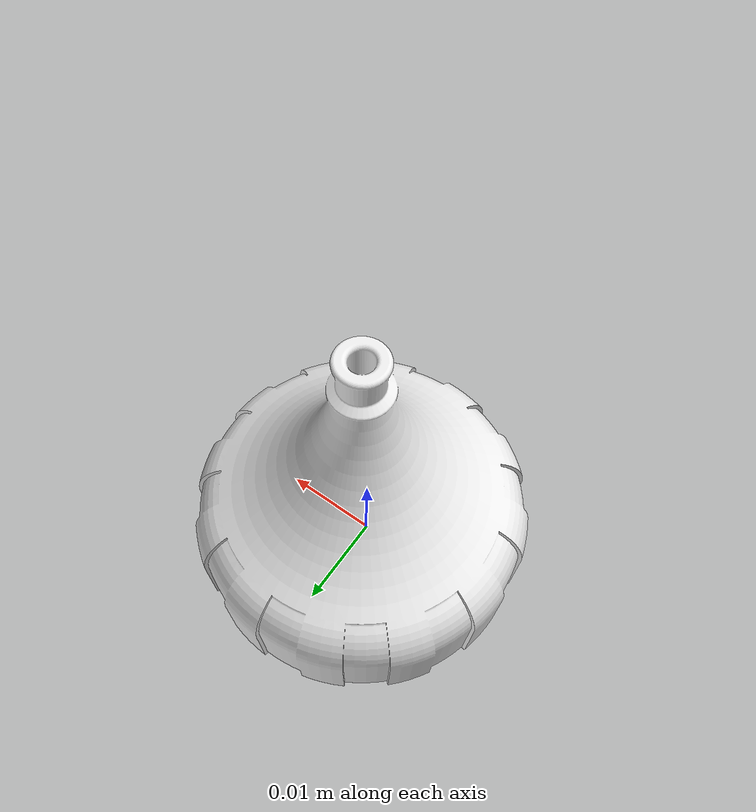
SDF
<?xml version="1.0" ?>
<sdf version="1.5">
  <model name="Bico_dosador">
    <static>true</static>
    <link name="bico_dosador_link">

      <collision name="collision">
        <geometry>
          <mesh>
            <uri>model://bico_dosador/meshes/bico_dosador.dae</uri>
            <scale>0.8 0.8 0.8</scale>
          </mesh>
        </geometry>
      </collision>

      <visual name="visual">
        <geometry>
          <mesh>
            <uri>model://bico_dosador/meshes/bico_dosador.dae</uri>
            <scale>0.8 0.8 0.8</scale>
          </mesh>
        </geometry>
        <material>
          <script>
            <uri>file://media/materials/scripts/gazebo.material</uri>
            <name>Gazebo/White</name>
          </script>
        </material>
      </visual>
    </link>
  </model>
</sdf>
